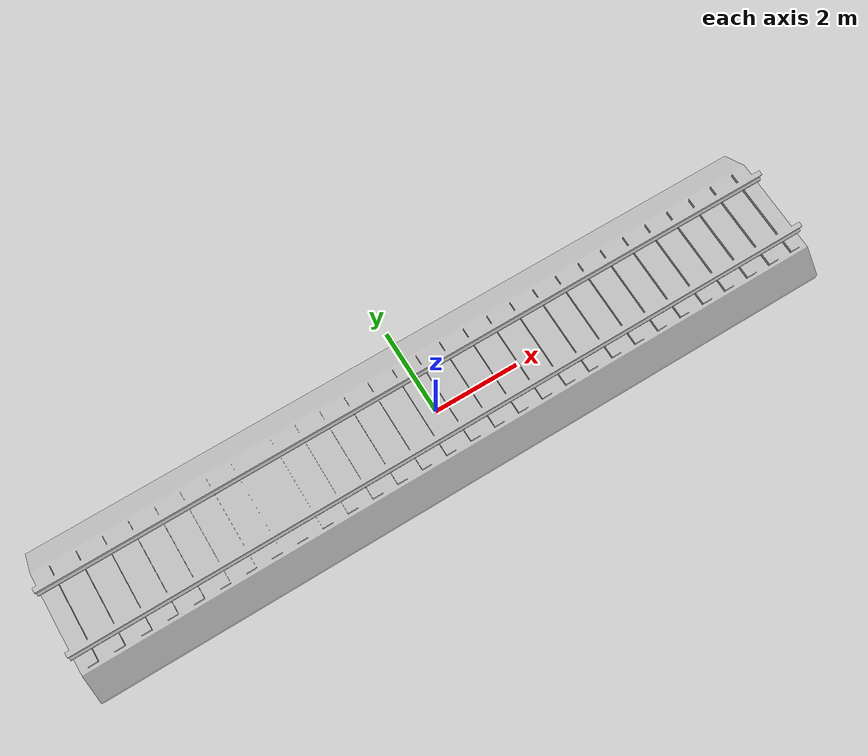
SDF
<?xml version="1.0" ?>
<sdf version="1.5">
  <model name="Cleft Board Min">
    <static>true</static>
    <link name="link">
    <gravity>1</gravity>
<inertial>
    <pose>0 0 0.4 0 0 0</pose>
        <mass>500</mass>
        <inertia>
          <ixx>51.2096</ixx>
          <iyy>51.2096</iyy>
          <izz>25</izz>
          <ixy>0</ixy>
          <ixz>0</ixz>
</inertia>
</inertial>
      <collision name="collision">
        <geometry>
          <mesh>
            <scale>1 1 1</scale>
            <uri>model://tracks/meshes/tracks.dae</uri>
          </mesh>
        </geometry>
        <surface>
        <friction>
          <ode>
            <mu>0.6</mu>
            <mu2>0.7</mu2>
          </ode>
        </friction>
      </surface>
      </collision>
      <visual name="visual">
        <geometry>
          <mesh>
            <scale>1 1 1</scale>
            <uri>model://tracks/meshes/tracks.dae</uri>
          </mesh>
        </geometry>
      </visual>
    </link>
  </model>
</sdf>
